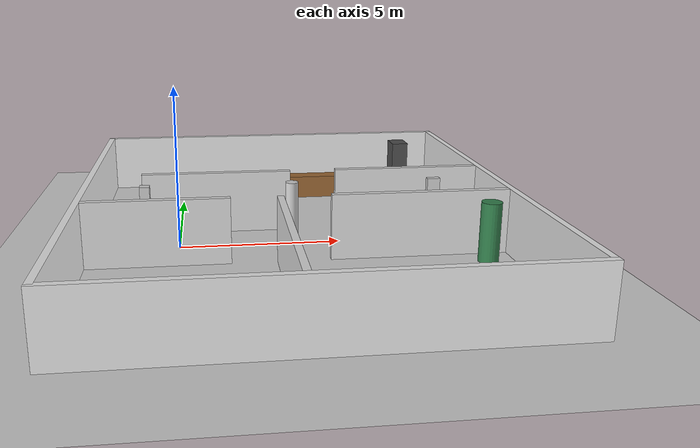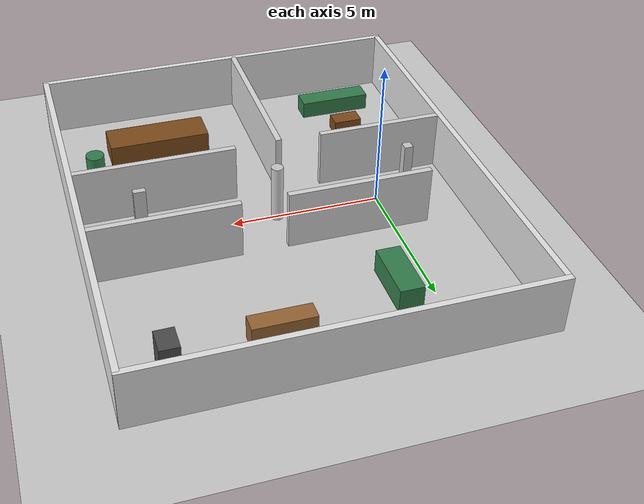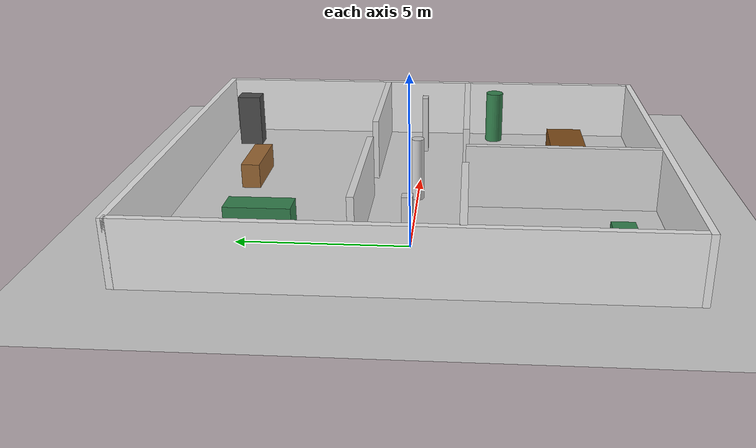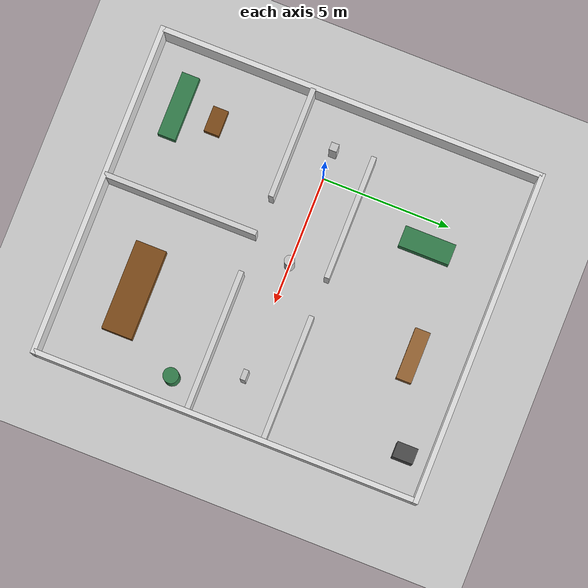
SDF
<?xml version="1.0" ?>
<sdf version="1.6">
  <world name="research_office_world">
    <plugin name="gazebo_ros_init" filename="libgazebo_ros_init.so"/>
    <plugin name="gazebo_ros_factory" filename="libgazebo_ros_factory.so"/>
    <plugin name="gazebo_ros_state" filename="libgazebo_ros_state.so"/>

    <light name="sun" type="directional">
      <cast_shadows>true</cast_shadows>
      <pose>0 0 10 0 0 0</pose>
      <diffuse>0.9 0.9 0.9 1</diffuse>
      <specular>0.3 0.3 0.3 1</specular>
      <direction>-0.5 0.1 -0.9</direction>
    </light>

    <ambient>0.6 0.6 0.6 1</ambient>

    <model name="ground_plane">
      <static>true</static>
      <link name="link">
        <collision name="collision">
          <geometry><plane><normal>0 0 1</normal><size>50 50</size></plane></geometry>
        </collision>
        <visual name="visual">
          <geometry><plane><normal>0 0 1</normal><size>50 50</size></plane></geometry>
          <material><ambient>0.8 0.8 0.8 1</ambient><diffuse>0.8 0.8 0.8 1</diffuse></material>
        </visual>
      </link>
    </model>

    <!-- _______________________OUTTER WALLS_______________________________ -->
    <model name="wall_south"><static>true</static><pose>3.6 -7.5 1.0 0 0 0</pose><link name="link"><collision name="collision"><geometry><box><size>13 0.2 2.0</size></box></geometry></collision><visual name="visual"><geometry><box><size>13 0.2 2.0</size></box></geometry><material><ambient>0.9 0.9 0.9 1</ambient></material></visual></link></model>
    <model name="wall_north"><static>true</static><pose>3.6 7.5 1.0 0 0 0</pose><link name="link"><collision name="collision"><geometry><box><size>13 0.2 2.0</size></box></geometry></collision><visual name="visual"><geometry><box><size>13 0.2 2.0</size></box></geometry><material><ambient>0.9 0.9 0.9 1</ambient></material></visual></link></model>

    <model name="wall_west"><static>true</static><pose>-2.8 0 1.0 0 0 0</pose><link name="link"><collision name="collision"><geometry><box><size>0.2 15 2.0</size></box></geometry></collision><visual name="visual"><geometry><box><size>0.2 15 2.0</size></box></geometry><material><ambient>0.9 0.9 0.9 1</ambient></material></visual></link></model>
    <model name="wall_east"><static>true</static><pose>10 0 1.0 0 0 0</pose><link name="link"><collision name="collision"><geometry><box><size>0.2 15 2.0</size></box></geometry></collision><visual name="visual"><geometry><box><size>0.2 15 2.0</size></box></geometry><material><ambient>0.9 0.9 0.9 1</ambient></material></visual></link></model>

    <!-- _______________________NORTH CORRIDOR WALLS________________________ -->
    <model name="corridor_wall_north_1"><static>true</static><pose>1.2 1.5 1.0 0 0 0</pose><link name="link"><collision name="collision"><geometry><box><size>4.8 0.2 2.0</size></box></geometry></collision><visual name="visual"><geometry><box><size>4.8 0.2 2.0</size></box></geometry><material><ambient>0.85 0.85 0.85 1</ambient></material></visual></link></model>
    <model name="corridor_wall_north_2"><static>true</static><pose>7.5 1.5 1.0 0 0 0</pose><link name="link"><collision name="collision"><geometry><box><size>4.8 0.2 2.0</size></box></geometry></collision><visual name="visual"><geometry><box><size>4.8 0.2 2.0</size></box></geometry><material><ambient>0.85 0.85 0.85 1</ambient></material></visual></link></model>

    <!-- ______________________SOUTH CORRIDOR WALLS_________________________ -->
    <model name="corridor_wall_south_1"><static>true</static><pose>-0.6 -1.5 1.0 0 0 0</pose><link name="link"><collision name="collision"><geometry><box><size>4.3 0.2 2.0</size></box></geometry></collision><visual name="visual"><geometry><box><size>4.3 0.2 2.0</size></box></geometry><material><ambient>0.85 0.85 0.85 1</ambient></material></visual></link></model>
    <model name="corridor_wall_south_2"><static>true</static><pose>7.2 -1.5 1.0 0 0 0</pose><link name="link"><collision name="collision"><geometry><box><size>5.4 0.2 2.0</size></box></geometry></collision><visual name="visual"><geometry><box><size>5.4 0.2 2.0</size></box></geometry><material><ambient>0.85 0.85 0.85 1</ambient></material></visual></link></model>

    <model name="wall_lounge_conf"><static>true</static><pose>3.0 -4.5 1.0 0 0 0</pose><link name="link"><collision name="collision"><geometry><box><size>0.2 6.0 2.0</size></box></geometry></collision><visual name="visual"><geometry><box><size>0.2 6.0 2.0</size></box></geometry><material><ambient>0.85 0.85 0.85 1</ambient></material></visual></link></model>
    <model name="lab_desk"><static>true</static><pose>5.0 5.5 0.4 0 0 0</pose><link name="link"><collision name="collision"><geometry><box><size>2.0 0.6 0.8</size></box></geometry></collision><visual name="visual"><geometry><box><size>2.0 0.6 0.8</size></box></geometry><material><ambient>0.6 0.4 0.2 1</ambient></material></visual></link></model>
    <model name="lab_server"><static>true</static><pose>8.5 6.5 0.9 0 0 0</pose><link name="link"><collision name="collision"><geometry><box><size>0.6 0.8 1.8</size></box></geometry></collision><visual name="visual"><geometry><box><size>0.6 0.8 1.8</size></box></geometry><material><ambient>0.3 0.3 0.3 1</ambient></material></visual></link></model>
    <model name="lounge_couch"><static>true</static><pose>-0.5 -6.0 0.3 0 0 0</pose><link name="link"><collision name="collision"><geometry><box><size>2.5 0.7 0.6</size></box></geometry></collision><visual name="visual"><geometry><box><size>2.5 0.7 0.6</size></box></geometry><material><ambient>0.2 0.5 0.3 1</ambient></material></visual></link></model>
    <model name="lounge_table"><static>true</static><pose>-0.5 -4.5 0.25 0 0 0</pose><link name="link"><collision name="collision"><geometry><box><size>1.0 0.6 0.5</size></box></geometry></collision><visual name="visual"><geometry><box><size>1.0 0.6 0.5</size></box></geometry><material><ambient>0.5 0.3 0.1 1</ambient></material></visual></link></model>
    <model name="conf_table"><static>true</static><pose>6.5 -5.0 0.4 0 0 0</pose><link name="link"><collision name="collision"><geometry><box><size>3.5 1.2 0.8</size></box></geometry></collision><visual name="visual"><geometry><box><size>3.5 1.2 0.8</size></box></geometry><material><ambient>0.5 0.3 0.1 1</ambient></material></visual></link></model>

    <!-- ______________________________PILLARS_______________________________-->
    <model name="corridor_pillar1"><static>true</static><pose>-1.0 0.0 1.0 0 0 0</pose><link name="link"><collision name="collision"><geometry><box><size>0.3 0.3 2.0</size></box></geometry></collision><visual name="visual"><geometry><box><size>0.3 0.3 2.0</size></box></geometry><material><ambient>0.8 0.8 0.8 1</ambient></material></visual></link></model>
    <model name="corridor_pillar2"><static>true</static><pose>3.5 0.0 1.0 0 0 0</pose><link name="link"><collision name="collision"><geometry><cylinder><length>2.0</length><radius>0.2</radius></cylinder></geometry></collision><visual name="visual"><geometry><cylinder><length>2.0</length><radius>0.2</radius></cylinder></geometry><material><ambient>0.8 0.8 0.8 1</ambient></material></visual></link></model>
    <model name="corridor_pillar3"><static>true</static><pose>8.0 0.0 1.0 0 0 0</pose><link name="link"><collision name="collision"><geometry><box><size>0.4 0.2 2.0</size></box></geometry></collision><visual name="visual"><geometry><box><size>0.4 0.2 2.0</size></box></geometry><material><ambient>0.8 0.8 0.8 1</ambient></material></visual></link></model>

    <!-- _____________________________OBSTACLES___________________________ -->
    <model name="lab_desk_2"><static>true</static><pose>1.0 4.5 0.4 0 0 0</pose><link name="link"><collision name="collision"><geometry><box><size>0.8 2.0 0.8</size></box></geometry></collision><visual name="visual"><geometry><box><size>0.8 2.0 0.8</size></box></geometry><material><ambient>0.2 0.5 0.3 1</ambient></material></visual></link></model>

    <model name="conf_cylinder"><static>true</static><pose>9.0 -2.5 1.0 0 0 0</pose><link name="link"><collision name="collision"><geometry><cylinder><length>1.8</length><radius>0.3</radius></cylinder></geometry></collision><visual name="visual"><geometry><cylinder><length>1.8</length><radius>0.3</radius></cylinder></geometry><material><ambient>0.2 0.5 0.3 1</ambient></material></visual></link></model>
  </world>
</sdf>
